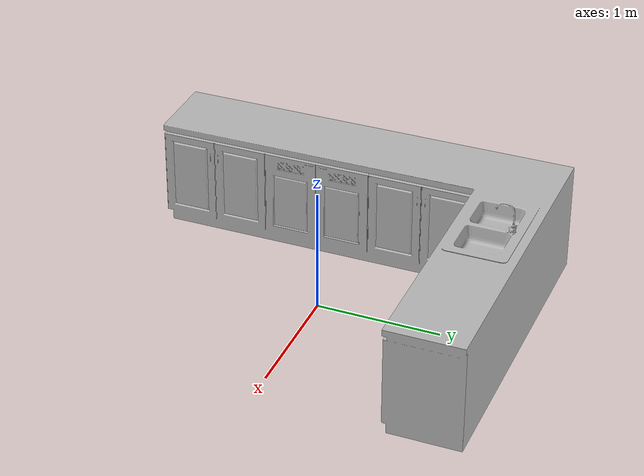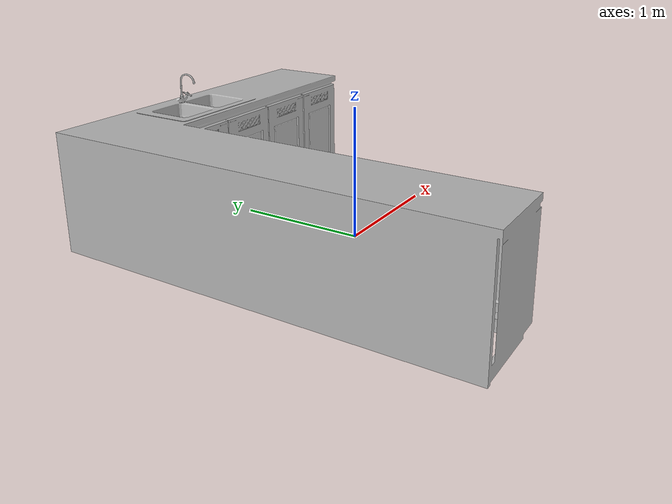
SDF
<?xml version="1.0" ?>
<sdf version="1.6">
  <model name="aws_robomaker_residential_KitchenCabinet_01">
    <link name="link">
      <inertial>
        <mass>1</mass>
      </inertial>
      <collision name="collision">
        <laser_retro>0</laser_retro>
        <max_contacts>10</max_contacts>
        <geometry>
          <mesh>
            <uri>model://aws_robomaker_residential_KitchenCabinet_01/meshes/aws_KitchenCabinet_01_collision.DAE</uri>
            <scale>1 1 1</scale>
          </mesh>
        </geometry>
      </collision>
      <visual name="visual">
	    <geometry>
          <mesh>
            <uri>model://aws_robomaker_residential_KitchenCabinet_01/meshes/aws_KitchenCabinet_01_visual.DAE</uri>
          </mesh>
        </geometry>
      <meta> <layer> 1 </layer></meta>
</visual>
    </link>

    <static>1</static>
  </model>
</sdf>
